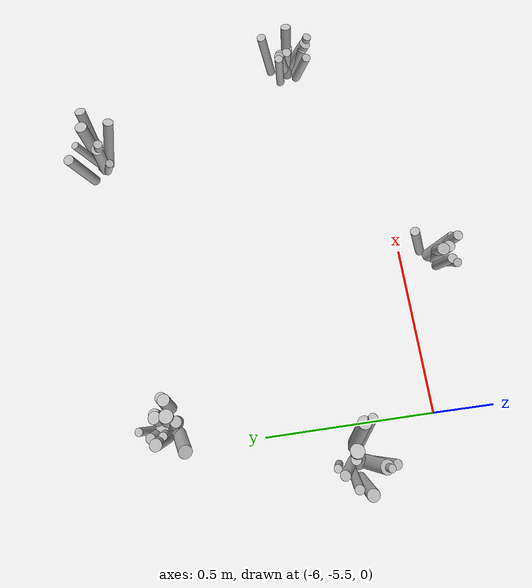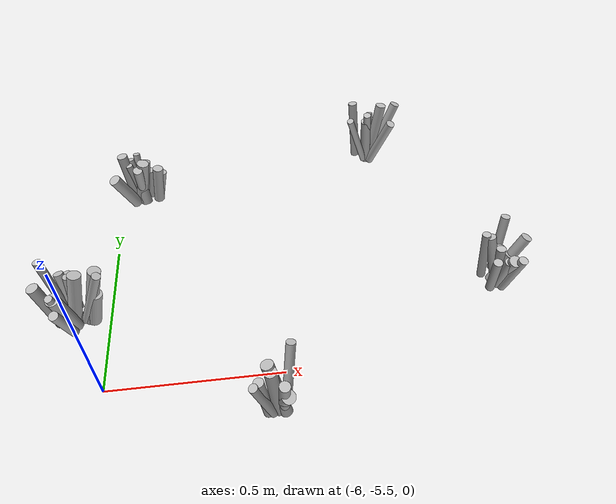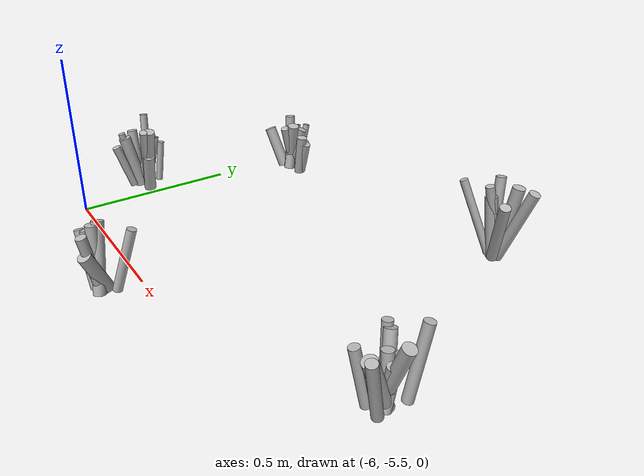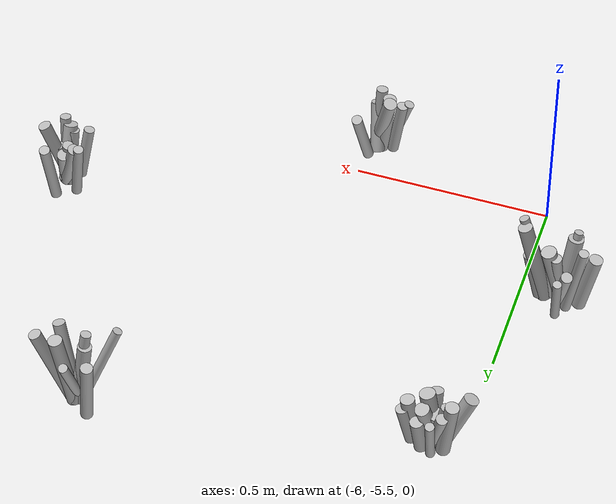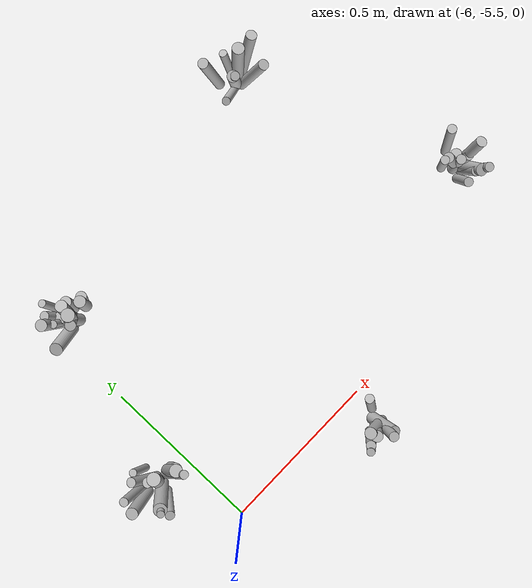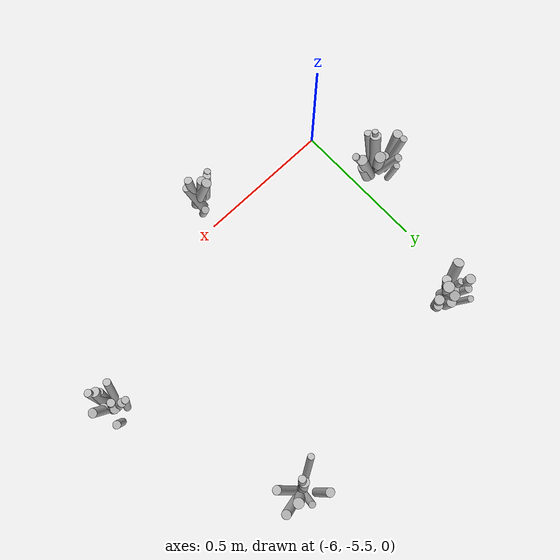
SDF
<sdf version="1.6">
 <world name="default">
  <model name="tussocks">
   <static>true</static>
   <link name="tuft97_0">
    <pose>-4.7849 -5.2940 0.0768 0 0.2165 4.9583</pose>
    <visual name="tuft97_0_v">
     <geometry><cylinder><radius>0.0138</radius><length>0.1670</length></cylinder></geometry>
     <material>
      <script>
       <uri>model://bushfire/materials/scripts</uri>
       <uri>model://bushfire/materials/textures</uri>
       <name>Bushfire/Foliage2</name>
      </script>
     </material>
    </visual>
   </link>
   <link name="tuft97_1">
    <pose>-4.8454 -5.2134 0.0812 0 0.1404 2.5548</pose>
    <visual name="tuft97_1_v">
     <geometry><cylinder><radius>0.0129</radius><length>0.1765</length></cylinder></geometry>
     <material>
      <script>
       <uri>model://bushfire/materials/scripts</uri>
       <uri>model://bushfire/materials/textures</uri>
       <name>Bushfire/Tussock</name>
      </script>
     </material>
    </visual>
   </link>
   <link name="tuft97_2">
    <pose>-4.8002 -5.2378 0.0591 0 0.3299 1.9551</pose>
    <visual name="tuft97_2_v">
     <geometry><cylinder><radius>0.0162</radius><length>0.1284</length></cylinder></geometry>
     <material>
      <script>
       <uri>model://bushfire/materials/scripts</uri>
       <uri>model://bushfire/materials/textures</uri>
       <name>Bushfire/Tussock</name>
      </script>
     </material>
    </visual>
   </link>
   <link name="tuft97_3">
    <pose>-4.7946 -5.2462 0.0563 0 0.1671 6.0391</pose>
    <visual name="tuft97_3_v">
     <geometry><cylinder><radius>0.0144</radius><length>0.1223</length></cylinder></geometry>
     <material>
      <script>
       <uri>model://bushfire/materials/scripts</uri>
       <uri>model://bushfire/materials/textures</uri>
       <name>Bushfire/Foliage2</name>
      </script>
     </material>
    </visual>
   </link>
   <link name="tuft97_4">
    <pose>-4.7870 -5.1770 0.0921 0 0.1740 1.4247</pose>
    <visual name="tuft97_4_v">
     <geometry><cylinder><radius>0.0138</radius><length>0.2003</length></cylinder></geometry>
     <material>
      <script>
       <uri>model://bushfire/materials/scripts</uri>
       <uri>model://bushfire/materials/textures</uri>
       <name>Bushfire/Tussock</name>
      </script>
     </material>
    </visual>
   </link>
   <link name="tuft97_6">
    <pose>-4.8045 -5.2792 0.0655 0 0.2143 4.4941</pose>
    <visual name="tuft97_6_v">
     <geometry><cylinder><radius>0.0146</radius><length>0.1423</length></cylinder></geometry>
     <material>
      <script>
       <uri>model://bushfire/materials/scripts</uri>
       <uri>model://bushfire/materials/textures</uri>
       <name>Bushfire/Foliage2</name>
      </script>
     </material>
    </visual>
   </link>
   <link name="tuft97_7">
    <pose>-4.8042 -5.2431 0.0652 0 0.1374 2.8058</pose>
    <visual name="tuft97_7_v">
     <geometry><cylinder><radius>0.0143</radius><length>0.1417</length></cylinder></geometry>
     <material>
      <script>
       <uri>model://bushfire/materials/scripts</uri>
       <uri>model://bushfire/materials/textures</uri>
       <name>Bushfire/Foliage2</name>
      </script>
     </material>
    </visual>
   </link>
   <link name="tuft97_8">
    <pose>-4.7835 -5.2452 0.0906 0 0.3329 0.0271</pose>
    <visual name="tuft97_8_v">
     <geometry><cylinder><radius>0.0162</radius><length>0.1970</length></cylinder></geometry>
     <material>
      <script>
       <uri>model://bushfire/materials/scripts</uri>
       <uri>model://bushfire/materials/textures</uri>
       <name>Bushfire/Tussock</name>
      </script>
     </material>
    </visual>
   </link>
   <link name="tuft97_9">
    <pose>-4.8374 -5.2875 0.0701 0 0.2139 3.9460</pose>
    <visual name="tuft97_9_v">
     <geometry><cylinder><radius>0.0136</radius><length>0.1524</length></cylinder></geometry>
     <material>
      <script>
       <uri>model://bushfire/materials/scripts</uri>
       <uri>model://bushfire/materials/textures</uri>
       <name>Bushfire/Tussock</name>
      </script>
     </material>
    </visual>
   </link>
   <link name="tuft97_10">
    <pose>-4.8205 -5.2268 0.0789 0 0.3205 2.4660</pose>
    <visual name="tuft97_10_v">
     <geometry><cylinder><radius>0.0153</radius><length>0.1716</length></cylinder></geometry>
     <material>
      <script>
       <uri>model://bushfire/materials/scripts</uri>
       <uri>model://bushfire/materials/textures</uri>
       <name>Bushfire/Foliage2</name>
      </script>
     </material>
    </visual>
   </link>
   <link name="tuft97_11">
    <pose>-4.7972 -5.2741 0.0724 0 0.3621 4.7085</pose>
    <visual name="tuft97_11_v">
     <geometry><cylinder><radius>0.0182</radius><length>0.1573</length></cylinder></geometry>
     <material>
      <script>
       <uri>model://bushfire/materials/scripts</uri>
       <uri>model://bushfire/materials/textures</uri>
       <name>Bushfire/Foliage2</name>
      </script>
     </material>
    </visual>
   </link>
   <link name="tuft99_0">
    <pose>-5.9410 -4.7317 0.0724 0 0.2144 2.7885</pose>
    <visual name="tuft99_0_v">
     <geometry><cylinder><radius>0.0118</radius><length>0.1573</length></cylinder></geometry>
     <material>
      <script>
       <uri>model://bushfire/materials/scripts</uri>
       <uri>model://bushfire/materials/textures</uri>
       <name>Bushfire/Foliage2</name>
      </script>
     </material>
    </visual>
   </link>
   <link name="tuft99_1">
    <pose>-5.9184 -4.7257 0.0723 0 0.3137 0.9769</pose>
    <visual name="tuft99_1_v">
     <geometry><cylinder><radius>0.0182</radius><length>0.1572</length></cylinder></geometry>
     <material>
      <script>
       <uri>model://bushfire/materials/scripts</uri>
       <uri>model://bushfire/materials/textures</uri>
       <name>Bushfire/Foliage2</name>
      </script>
     </material>
    </visual>
   </link>
   <link name="tuft99_2">
    <pose>-5.8641 -4.7247 0.0529 0 0.2236 0.1991</pose>
    <visual name="tuft99_2_v">
     <geometry><cylinder><radius>0.0164</radius><length>0.1149</length></cylinder></geometry>
     <material>
      <script>
       <uri>model://bushfire/materials/scripts</uri>
       <uri>model://bushfire/materials/textures</uri>
       <name>Bushfire/Tussock</name>
      </script>
     </material>
    </visual>
   </link>
   <link name="tuft99_3">
    <pose>-5.8996 -4.7053 0.0493 0 0.1507 0.8777</pose>
    <visual name="tuft99_3_v">
     <geometry><cylinder><radius>0.0170</radius><length>0.1072</length></cylinder></geometry>
     <material>
      <script>
       <uri>model://bushfire/materials/scripts</uri>
       <uri>model://bushfire/materials/textures</uri>
       <name>Bushfire/Tussock</name>
      </script>
     </material>
    </visual>
   </link>
   <link name="tuft99_4">
    <pose>-5.9666 -4.7142 0.0858 0 0.1251 2.6241</pose>
    <visual name="tuft99_4_v">
     <geometry><cylinder><radius>0.0174</radius><length>0.1866</length></cylinder></geometry>
     <material>
      <script>
       <uri>model://bushfire/materials/scripts</uri>
       <uri>model://bushfire/materials/textures</uri>
       <name>Bushfire/Foliage2</name>
      </script>
     </material>
    </visual>
   </link>
   <link name="tuft99_5">
    <pose>-5.9268 -4.7360 0.0585 0 0.2497 2.0453</pose>
    <visual name="tuft99_5_v">
     <geometry><cylinder><radius>0.0183</radius><length>0.1272</length></cylinder></geometry>
     <material>
      <script>
       <uri>model://bushfire/materials/scripts</uri>
       <uri>model://bushfire/materials/textures</uri>
       <name>Bushfire/Foliage2</name>
      </script>
     </material>
    </visual>
   </link>
   <link name="tuft99_6">
    <pose>-5.8691 -4.7334 0.0645 0 0.1153 0.0669</pose>
    <visual name="tuft99_6_v">
     <geometry><cylinder><radius>0.0176</radius><length>0.1401</length></cylinder></geometry>
     <material>
      <script>
       <uri>model://bushfire/materials/scripts</uri>
       <uri>model://bushfire/materials/textures</uri>
       <name>Bushfire/Tussock</name>
      </script>
     </material>
    </visual>
   </link>
   <link name="tuft99_7">
    <pose>-5.9226 -4.7378 0.0804 0 0.1839 6.1131</pose>
    <visual name="tuft99_7_v">
     <geometry><cylinder><radius>0.0198</radius><length>0.1747</length></cylinder></geometry>
     <material>
      <script>
       <uri>model://bushfire/materials/scripts</uri>
       <uri>model://bushfire/materials/textures</uri>
       <name>Bushfire/Tussock</name>
      </script>
     </material>
    </visual>
   </link>
   <link name="tuft99_8">
    <pose>-5.9434 -4.7122 0.0727 0 0.3228 2.1753</pose>
    <visual name="tuft99_8_v">
     <geometry><cylinder><radius>0.0147</radius><length>0.1581</length></cylinder></geometry>
     <material>
      <script>
       <uri>model://bushfire/materials/scripts</uri>
       <uri>model://bushfire/materials/textures</uri>
       <name>Bushfire/Foliage2</name>
      </script>
     </material>
    </visual>
   </link>
   <link name="tuft99_9">
    <pose>-5.9257 -4.7448 0.0759 0 0.2388 4.7785</pose>
    <visual name="tuft99_9_v">
     <geometry><cylinder><radius>0.0160</radius><length>0.1650</length></cylinder></geometry>
     <material>
      <script>
       <uri>model://bushfire/materials/scripts</uri>
       <uri>model://bushfire/materials/textures</uri>
       <name>Bushfire/Tussock</name>
      </script>
     </material>
    </visual>
   </link>
   <link name="tuft99_10">
    <pose>-5.9790 -4.7653 0.0675 0 0.4106 3.6313</pose>
    <visual name="tuft99_10_v">
     <geometry><cylinder><radius>0.0194</radius><length>0.1468</length></cylinder></geometry>
     <material>
      <script>
       <uri>model://bushfire/materials/scripts</uri>
       <uri>model://bushfire/materials/textures</uri>
       <name>Bushfire/Tussock</name>
      </script>
     </material>
    </visual>
   </link>
   <link name="tuft99_11">
    <pose>-5.9340 -4.6798 0.0717 0 0.2398 1.7057</pose>
    <visual name="tuft99_11_v">
     <geometry><cylinder><radius>0.0115</radius><length>0.1559</length></cylinder></geometry>
     <material>
      <script>
       <uri>model://bushfire/materials/scripts</uri>
       <uri>model://bushfire/materials/textures</uri>
       <name>Bushfire/Tussock</name>
      </script>
     </material>
    </visual>
   </link>
   <link name="tuft152_0">
    <pose>-6.0865 -5.2444 0.0892 0 0.2419 0.5385</pose>
    <visual name="tuft152_0_v">
     <geometry><cylinder><radius>0.0196</radius><length>0.1939</length></cylinder></geometry>
     <material>
      <script>
       <uri>model://bushfire/materials/scripts</uri>
       <uri>model://bushfire/materials/textures</uri>
       <name>Bushfire/Tussock</name>
      </script>
     </material>
    </visual>
   </link>
   <link name="tuft152_1">
    <pose>-6.1033 -5.1897 0.0651 0 0.1456 1.7531</pose>
    <visual name="tuft152_1_v">
     <geometry><cylinder><radius>0.0113</radius><length>0.1416</length></cylinder></geometry>
     <material>
      <script>
       <uri>model://bushfire/materials/scripts</uri>
       <uri>model://bushfire/materials/textures</uri>
       <name>Bushfire/Foliage2</name>
      </script>
     </material>
    </visual>
   </link>
   <link name="tuft152_2">
    <pose>-6.1107 -5.3151 0.0708 0 0.3102 4.4477</pose>
    <visual name="tuft152_2_v">
     <geometry><cylinder><radius>0.0140</radius><length>0.1538</length></cylinder></geometry>
     <material>
      <script>
       <uri>model://bushfire/materials/scripts</uri>
       <uri>model://bushfire/materials/textures</uri>
       <name>Bushfire/Tussock</name>
      </script>
     </material>
    </visual>
   </link>
   <link name="tuft152_3">
    <pose>-6.1377 -5.2241 0.1110 0 0.1721 2.6560</pose>
    <visual name="tuft152_3_v">
     <geometry><cylinder><radius>0.0128</radius><length>0.2413</length></cylinder></geometry>
     <material>
      <script>
       <uri>model://bushfire/materials/scripts</uri>
       <uri>model://bushfire/materials/textures</uri>
       <name>Bushfire/Tussock</name>
      </script>
     </material>
    </visual>
   </link>
   <link name="tuft152_4">
    <pose>-6.1093 -5.2859 0.0834 0 0.2281 4.2970</pose>
    <visual name="tuft152_4_v">
     <geometry><cylinder><radius>0.0199</radius><length>0.1814</length></cylinder></geometry>
     <material>
      <script>
       <uri>model://bushfire/materials/scripts</uri>
       <uri>model://bushfire/materials/textures</uri>
       <name>Bushfire/Foliage2</name>
      </script>
     </material>
    </visual>
   </link>
   <link name="tuft152_5">
    <pose>-6.0910 -5.2415 0.0833 0 0.1674 1.3342</pose>
    <visual name="tuft152_5_v">
     <geometry><cylinder><radius>0.0144</radius><length>0.1811</length></cylinder></geometry>
     <material>
      <script>
       <uri>model://bushfire/materials/scripts</uri>
       <uri>model://bushfire/materials/textures</uri>
       <name>Bushfire/Tussock</name>
      </script>
     </material>
    </visual>
   </link>
   <link name="tuft152_6">
    <pose>-6.0322 -5.2676 0.1132 0 0.3753 5.9690</pose>
    <visual name="tuft152_6_v">
     <geometry><cylinder><radius>0.0126</radius><length>0.2461</length></cylinder></geometry>
     <material>
      <script>
       <uri>model://bushfire/materials/scripts</uri>
       <uri>model://bushfire/materials/textures</uri>
       <name>Bushfire/Tussock</name>
      </script>
     </material>
    </visual>
   </link>
   <link name="tuft152_7">
    <pose>-6.1102 -5.2179 0.0750 0 0.3440 2.1030</pose>
    <visual name="tuft152_7_v">
     <geometry><cylinder><radius>0.0145</radius><length>0.1631</length></cylinder></geometry>
     <material>
      <script>
       <uri>model://bushfire/materials/scripts</uri>
       <uri>model://bushfire/materials/textures</uri>
       <name>Bushfire/Foliage2</name>
      </script>
     </material>
    </visual>
   </link>
   <link name="tuft152_8">
    <pose>-6.0303 -5.2550 0.1087 0 0.2755 6.1714</pose>
    <visual name="tuft152_8_v">
     <geometry><cylinder><radius>0.0183</radius><length>0.2362</length></cylinder></geometry>
     <material>
      <script>
       <uri>model://bushfire/materials/scripts</uri>
       <uri>model://bushfire/materials/textures</uri>
       <name>Bushfire/Foliage2</name>
      </script>
     </material>
    </visual>
   </link>
   <link name="tuft152_9">
    <pose>-6.1641 -5.2541 0.0822 0 0.1823 3.2268</pose>
    <visual name="tuft152_9_v">
     <geometry><cylinder><radius>0.0176</radius><length>0.1787</length></cylinder></geometry>
     <material>
      <script>
       <uri>model://bushfire/materials/scripts</uri>
       <uri>model://bushfire/materials/textures</uri>
       <name>Bushfire/Foliage2</name>
      </script>
     </material>
    </visual>
   </link>
   <link name="tuft152_10">
    <pose>-6.1110 -5.2898 0.0917 0 0.2565 4.2958</pose>
    <visual name="tuft152_10_v">
     <geometry><cylinder><radius>0.0112</radius><length>0.1994</length></cylinder></geometry>
     <material>
      <script>
       <uri>model://bushfire/materials/scripts</uri>
       <uri>model://bushfire/materials/textures</uri>
       <name>Bushfire/Foliage2</name>
      </script>
     </material>
    </visual>
   </link>
   <link name="tuft152_11">
    <pose>-6.0341 -5.2578 0.0617 0 0.2516 6.1166</pose>
    <visual name="tuft152_11_v">
     <geometry><cylinder><radius>0.0195</radius><length>0.1341</length></cylinder></geometry>
     <material>
      <script>
       <uri>model://bushfire/materials/scripts</uri>
       <uri>model://bushfire/materials/textures</uri>
       <name>Bushfire/Tussock</name>
      </script>
     </material>
    </visual>
   </link>
   <link name="tuft171_0">
    <pose>-5.0760 -4.5716 0.0838 0 0.3230 1.3628</pose>
    <visual name="tuft171_0_v">
     <geometry><cylinder><radius>0.0118</radius><length>0.1822</length></cylinder></geometry>
     <material>
      <script>
       <uri>model://bushfire/materials/scripts</uri>
       <uri>model://bushfire/materials/textures</uri>
       <name>Bushfire/Foliage2</name>
      </script>
     </material>
    </visual>
   </link>
   <link name="tuft171_1">
    <pose>-5.1248 -4.5457 0.1010 0 0.1604 2.2714</pose>
    <visual name="tuft171_1_v">
     <geometry><cylinder><radius>0.0154</radius><length>0.2196</length></cylinder></geometry>
     <material>
      <script>
       <uri>model://bushfire/materials/scripts</uri>
       <uri>model://bushfire/materials/textures</uri>
       <name>Bushfire/Foliage2</name>
      </script>
     </material>
    </visual>
   </link>
   <link name="tuft171_2">
    <pose>-5.0438 -4.6309 0.0954 0 0.3304 5.5503</pose>
    <visual name="tuft171_2_v">
     <geometry><cylinder><radius>0.0155</radius><length>0.2074</length></cylinder></geometry>
     <material>
      <script>
       <uri>model://bushfire/materials/scripts</uri>
       <uri>model://bushfire/materials/textures</uri>
       <name>Bushfire/Tussock</name>
      </script>
     </material>
    </visual>
   </link>
   <link name="tuft171_3">
    <pose>-5.0863 -4.6036 0.1046 0 0.2107 4.0626</pose>
    <visual name="tuft171_3_v">
     <geometry><cylinder><radius>0.0131</radius><length>0.2274</length></cylinder></geometry>
     <material>
      <script>
       <uri>model://bushfire/materials/scripts</uri>
       <uri>model://bushfire/materials/textures</uri>
       <name>Bushfire/Foliage2</name>
      </script>
     </material>
    </visual>
   </link>
   <link name="tuft171_4">
    <pose>-5.0266 -4.5860 0.1113 0 0.3227 0.1997</pose>
    <visual name="tuft171_4_v">
     <geometry><cylinder><radius>0.0160</radius><length>0.2419</length></cylinder></geometry>
     <material>
      <script>
       <uri>model://bushfire/materials/scripts</uri>
       <uri>model://bushfire/materials/textures</uri>
       <name>Bushfire/Foliage2</name>
      </script>
     </material>
    </visual>
   </link>
   <link name="tuft171_5">
    <pose>-5.1295 -4.6282 0.1090 0 0.4073 3.7160</pose>
    <visual name="tuft171_5_v">
     <geometry><cylinder><radius>0.0118</radius><length>0.2371</length></cylinder></geometry>
     <material>
      <script>
       <uri>model://bushfire/materials/scripts</uri>
       <uri>model://bushfire/materials/textures</uri>
       <name>Bushfire/Tussock</name>
      </script>
     </material>
    </visual>
   </link>
   <link name="tuft171_6">
    <pose>-5.0898 -4.6038 0.0873 0 0.1319 3.8146</pose>
    <visual name="tuft171_6_v">
     <geometry><cylinder><radius>0.0176</radius><length>0.1899</length></cylinder></geometry>
     <material>
      <script>
       <uri>model://bushfire/materials/scripts</uri>
       <uri>model://bushfire/materials/textures</uri>
       <name>Bushfire/Tussock</name>
      </script>
     </material>
    </visual>
   </link>
   <link name="tuft171_7">
    <pose>-5.0548 -4.5841 0.1077 0 0.1366 0.4555</pose>
    <visual name="tuft171_7_v">
     <geometry><cylinder><radius>0.0180</radius><length>0.2341</length></cylinder></geometry>
     <material>
      <script>
       <uri>model://bushfire/materials/scripts</uri>
       <uri>model://bushfire/materials/textures</uri>
       <name>Bushfire/Foliage2</name>
      </script>
     </material>
    </visual>
   </link>
   <link name="tuft178_1">
    <pose>-5.4980 -5.5408 0.0854 0 0.3070 1.2842</pose>
    <visual name="tuft178_1_v">
     <geometry><cylinder><radius>0.0135</radius><length>0.1856</length></cylinder></geometry>
     <material>
      <script>
       <uri>model://bushfire/materials/scripts</uri>
       <uri>model://bushfire/materials/textures</uri>
       <name>Bushfire/Tussock</name>
      </script>
     </material>
    </visual>
   </link>
   <link name="tuft178_3">
    <pose>-5.5188 -5.6206 0.0837 0 0.1752 4.6596</pose>
    <visual name="tuft178_3_v">
     <geometry><cylinder><radius>0.0147</radius><length>0.1819</length></cylinder></geometry>
     <material>
      <script>
       <uri>model://bushfire/materials/scripts</uri>
       <uri>model://bushfire/materials/textures</uri>
       <name>Bushfire/Foliage2</name>
      </script>
     </material>
    </visual>
   </link>
   <link name="tuft178_4">
    <pose>-5.5707 -5.6096 0.0760 0 0.1378 3.1449</pose>
    <visual name="tuft178_4_v">
     <geometry><cylinder><radius>0.0141</radius><length>0.1651</length></cylinder></geometry>
     <material>
      <script>
       <uri>model://bushfire/materials/scripts</uri>
       <uri>model://bushfire/materials/textures</uri>
       <name>Bushfire/Tussock</name>
      </script>
     </material>
    </visual>
   </link>
   <link name="tuft178_5">
    <pose>-5.5408 -5.6023 0.0882 0 0.1120 2.8371</pose>
    <visual name="tuft178_5_v">
     <geometry><cylinder><radius>0.0170</radius><length>0.1917</length></cylinder></geometry>
     <material>
      <script>
       <uri>model://bushfire/materials/scripts</uri>
       <uri>model://bushfire/materials/textures</uri>
       <name>Bushfire/Tussock</name>
      </script>
     </material>
    </visual>
   </link>
   <link name="tuft178_7">
    <pose>-5.5350 -5.5968 0.0918 0 0.2854 2.4983</pose>
    <visual name="tuft178_7_v">
     <geometry><cylinder><radius>0.0173</radius><length>0.1995</length></cylinder></geometry>
     <material>
      <script>
       <uri>model://bushfire/materials/scripts</uri>
       <uri>model://bushfire/materials/textures</uri>
       <name>Bushfire/Foliage2</name>
      </script>
     </material>
    </visual>
   </link>
   <link name="tuft178_8">
    <pose>-5.5175 -5.6120 0.0614 0 0.4189 4.9934</pose>
    <visual name="tuft178_8_v">
     <geometry><cylinder><radius>0.0186</radius><length>0.1336</length></cylinder></geometry>
     <material>
      <script>
       <uri>model://bushfire/materials/scripts</uri>
       <uri>model://bushfire/materials/textures</uri>
       <name>Bushfire/Foliage2</name>
      </script>
     </material>
    </visual>
   </link>
   <link name="tuft178_9">
    <pose>-5.5713 -5.6181 0.0766 0 0.3072 3.3043</pose>
    <visual name="tuft178_9_v">
     <geometry><cylinder><radius>0.0125</radius><length>0.1665</length></cylinder></geometry>
     <material>
      <script>
       <uri>model://bushfire/materials/scripts</uri>
       <uri>model://bushfire/materials/textures</uri>
       <name>Bushfire/Tussock</name>
      </script>
     </material>
    </visual>
   </link>
  </model>
 </world>
</sdf>
